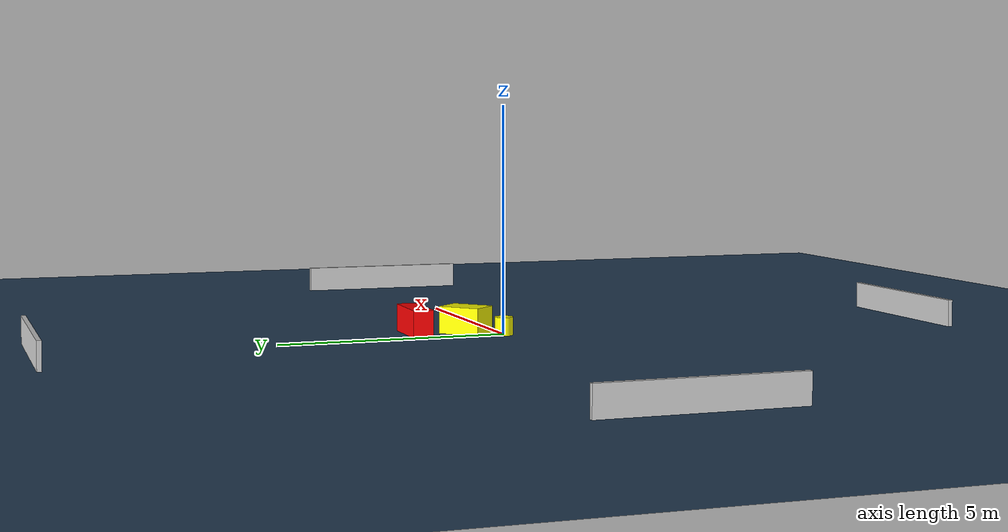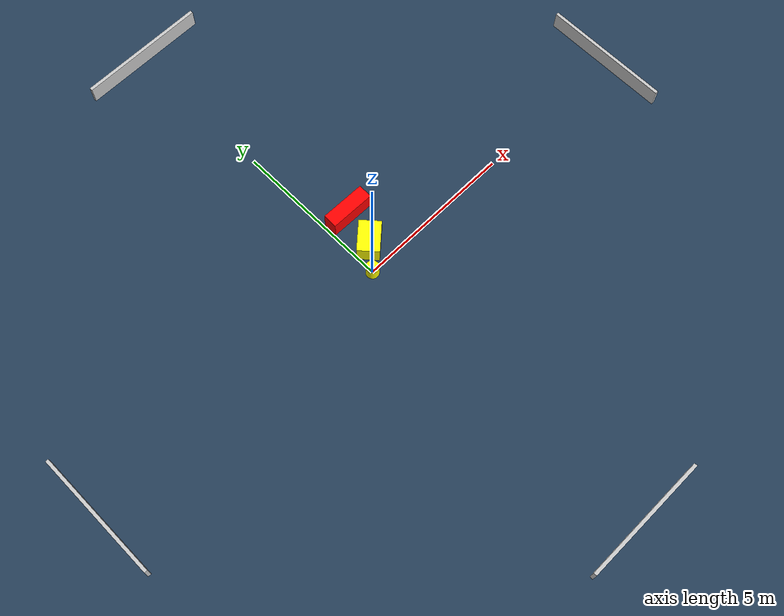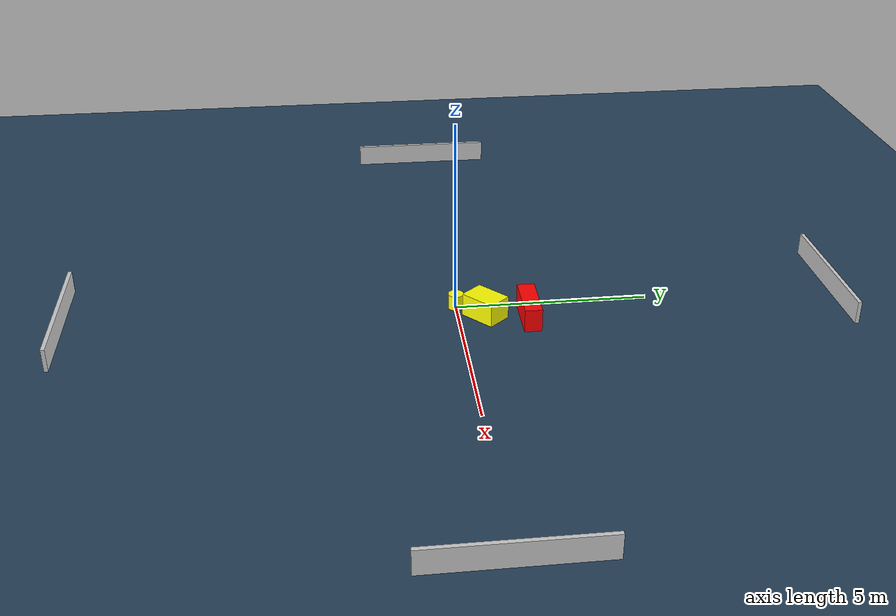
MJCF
<?xml version="1.0" ?>
<mujoco model="generated_environment">
  <option timestep="0.01" integrator="RK4" cone="elliptic"/>
  <default>
    <geom density="1"/>
  </default>
  <asset>
    <texture builtin="gradient" height="3072" name="skybox" rgb1="0.3 0.5 0.7" rgb2="0 0 0" type="skybox" width="512"/>
    <texture builtin="checker" height="300" name="groundplane" rgb1="0.2 0.3 0.4" rgb2="0.1 0.2 0.3" type="2d" width="300"/>
    <material name="groundplane" reflectance="0.2" texrepeat="5 5" texture="groundplane"/>
  </asset>
  <worldbody>
    <light dir="0 0 -1" directional="true" pos="0 0 1.5"/>
    <geom condim="3" friction="0.5 0.005 0.001" material="groundplane" name="floor" pos="0 0 0" size="0 0 0.05" type="plane"/>
    <body name="walls">
      <geom name="wall_1" condim="4" pos="-10.0 0.0 0.3" rgba="0.800000011920929 0.800000011920929 0.800000011920929 1.0" size="0.05 2.0 0.3" type="box"/>
      <geom name="wall_2" condim="4" pos="10.0 0.0 0.3" rgba="0.800000011920929 0.800000011920929 0.800000011920929 1.0" size="0.05 2.0 0.3" type="box"/>
      <geom name="wall_3" condim="4" pos="0.0 -10.0 0.3" rgba="0.800000011920929 0.800000011920929 0.800000011920929 1.0" size="2.0 0.05 0.3" type="box"/>
      <geom name="wall_4" condim="4" pos="0.0 10.0 0.3" rgba="0.800000011920929 0.800000011920929 0.800000011920929 1.0" size="2.0 0.05 0.3" type="box"/>
    </body>
    <body name="robot">
      <joint name="joint_x" type="slide" pos="0 0 0" axis="1 0 0"/>
      <joint name="joint_y" type="slide" pos="0 0 0" axis="0 1 0"/>
      <geom name="robot" type="cylinder" pos="0.0 0.0 0.2" size="0.2 0.2 0.0" mass="5.0" friction="1.0 0.005 0.0001" condim="4" rgba="1.0 1.0 0.0 1.0"/>
    </body>
    <body name="obstacle_1_movable">
      <geom name="obstacle_1_movable" condim="4" pos="0.5464852860493731 0.6918260119390344 0.3" euler="0 0 221.8159746652707" friction="0.0 0.005 0.001" rgba="1.0 1.0 0.0 1.0" size="0.48330188797592494 0.33485570995901937 0.3" type="box" mass="0.1"/>
      <joint type="free"/>
    </body>
    <body name="obstacle_2_static">
      <geom name="obstacle_2_static" condim="4" pos="0.7651590635176356 1.7922359320689827 0.3" euler="0 0 269.17173711567193" friction="0.0 0.005 0.001" rgba="1.0 0.0 0.0 1.0" size="0.22401039762774097 0.7005260518497669 0.3" type="box"/>
    </body>
  </worldbody>
  <actuator>
    <motor name="actuator_x" joint="joint_x" gear="1" ctrlrange="-1 1"/>
    <motor name="actuator_y" joint="joint_y" gear="1" ctrlrange="-1 1"/>
  </actuator>
</mujoco>
